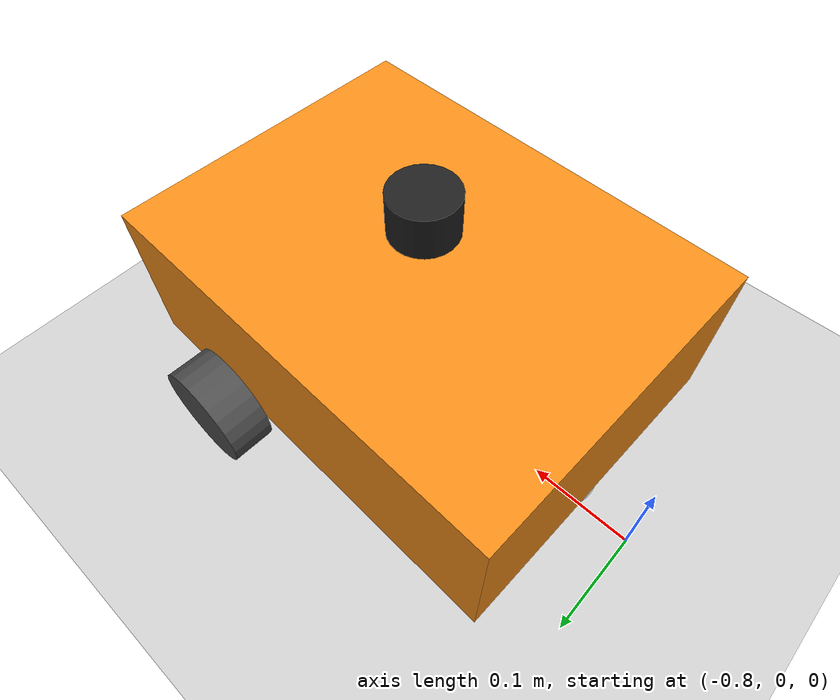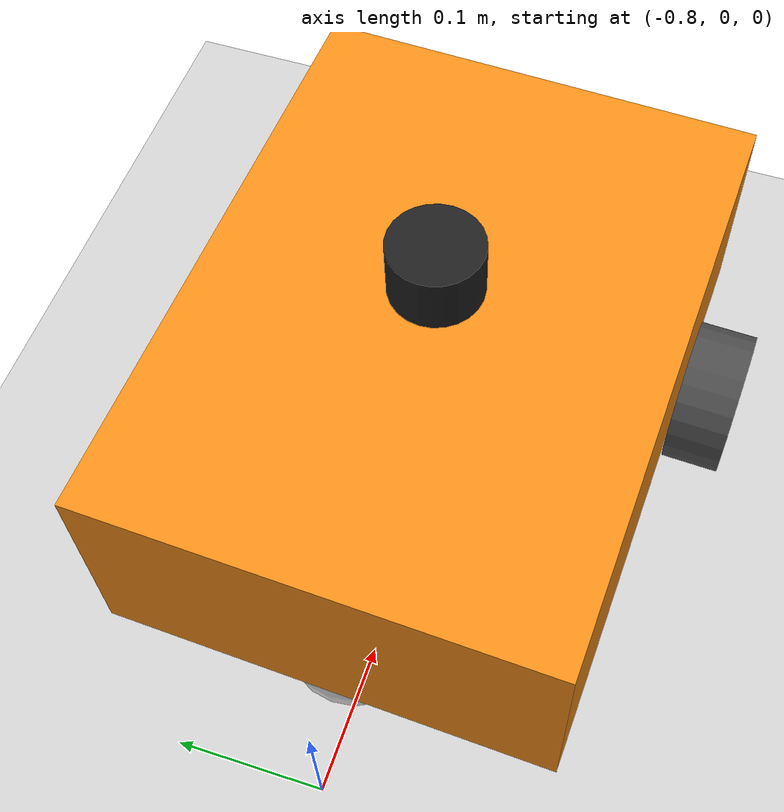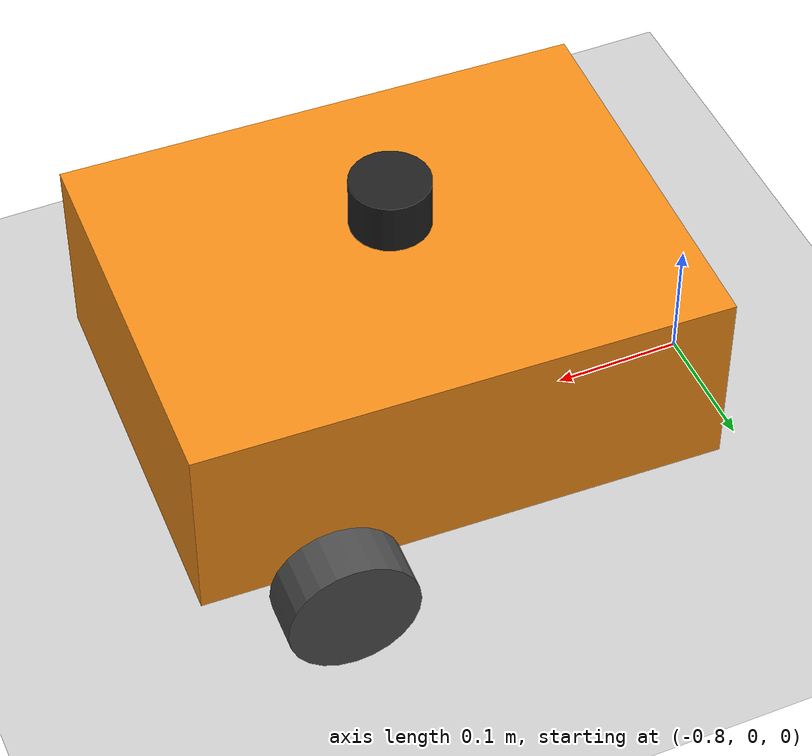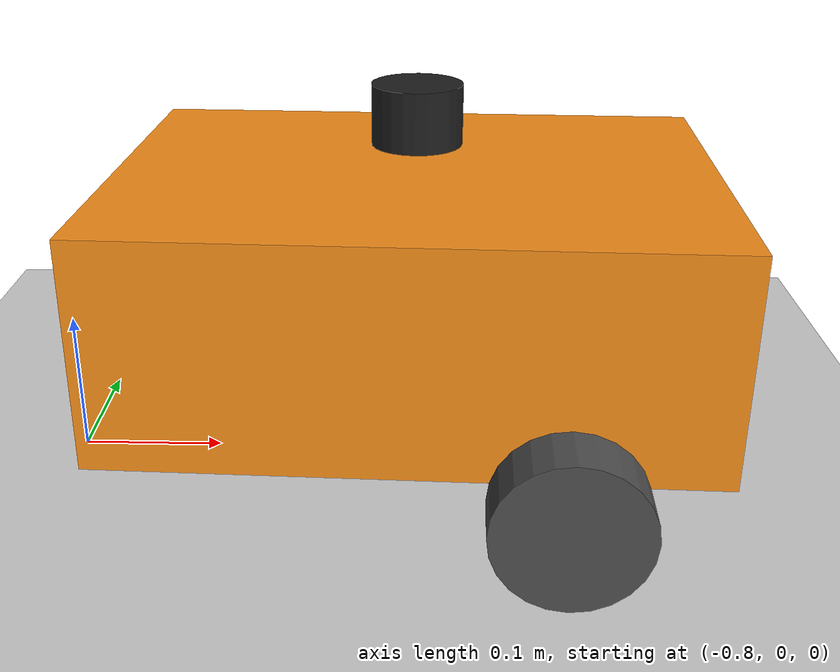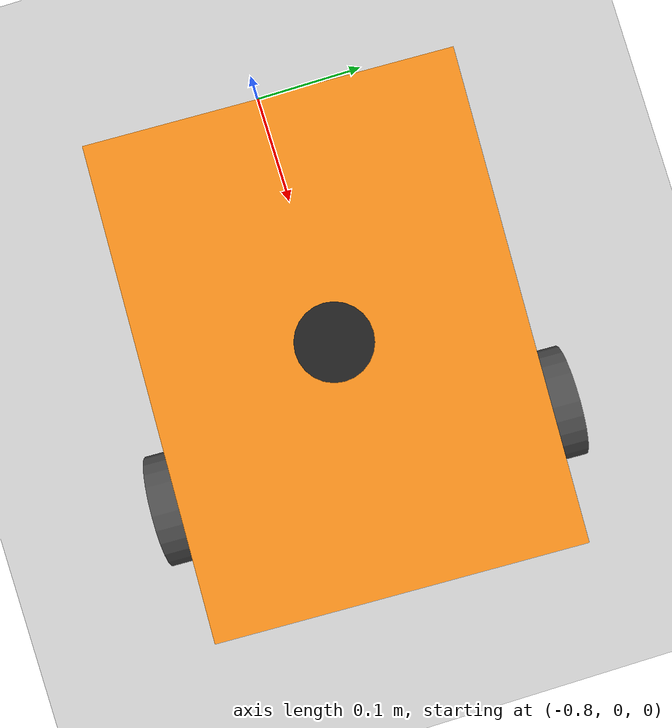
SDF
<sdf version="1.7">
 <world name="test_world">
  <light name="sun" type="directional">
   <pose>0 0 10 0 -0 0</pose>
   <diffuse>0.8 0.8 0.8 1</diffuse>
   <specular>0.2 0.2 0.2 1</specular>
   <attenuation>
    <range>1000</range>
    <constant>0.9</constant>
    <linear>0.01</linear>
    <quadratic>0.001</quadratic>
   </attenuation>
   <direction>-0.5 0.1 -0.9</direction>
   <spot><inner_angle>0</inner_angle><outer_angle>0</outer_angle><falloff>0</falloff></spot>
  </light>
  <model name="ground_plane">
   <static>1</static>
   <link name="link">
    <collision name="collision">
     <geometry><plane><normal>0 0 1</normal><size>100 100</size></plane></geometry>
     <surface><friction><ode><mu>100</mu><mu2>50</mu2></ode></friction></surface>
    </collision>
    <visual name="visual">
     <cast_shadows>0</cast_shadows>
     <geometry><plane><normal>0 0 1</normal><size>100 100</size></plane></geometry>
     <material>
      <script><uri>file://media/materials/scripts/gazebo.material</uri><name>Gazebo/Grey</name></script>
     </material>
    </visual>
   </link>
  </model>
  <physics type="ode">
   <real_time_update_rate>1000</real_time_update_rate>
   <max_step_size>0.001</max_step_size>
   <real_time_factor>1</real_time_factor>
  </physics>
  <gravity>0 0 -9.8</gravity>
  <magnetic_field>6e-06 2.3e-05 -4.2e-05</magnetic_field>
  <atmosphere type="adiabatic"/>
  <scene><ambient>0.4 0.4 0.4 1</ambient><background>0.7 0.7 0.7 1</background><shadows>1</shadows></scene>
  <audio><device>default</device></audio>
  <spherical_coordinates>
   <surface_model>EARTH_WGS84</surface_model>
   <latitude_deg>0</latitude_deg>
   <longitude_deg>0</longitude_deg>
   <elevation>0</elevation>
   <heading_deg>0</heading_deg>
  </spherical_coordinates>
  <model name="andr">
   <link name="base_link">
    <inertial>
     <pose>-0.102885 0 0.124038 0 -0 0</pose>
     <mass>5.2</mass>
     <inertia>
      <ixx>0.0491052</ixx>
      <ixy>0</ixy>
      <ixz>-0.00186058</ixz>
      <iyy>0.0804786</iyy>
      <iyz>0</iyz>
      <izz>0.106483</izz>
     </inertia>
    </inertial>
    <collision name="base_link_fixed_joint_lump__chassis_collision">
     <pose>-0.1 0 0.0875 0 -0 0</pose>
     <geometry><box><size>0.4 0.3 0.15</size></box></geometry>
    </collision>
    <collision name="base_link_fixed_joint_lump__caster_wheel_collision_1">
     <pose>-0.25 0 0 0 -0 0</pose>
     <geometry><sphere><radius>0.05</radius></sphere></geometry>
     <surface><friction><ode><mu>0.001</mu><mu2>0.001</mu2></ode></friction></surface>
    </collision>
    <collision name="base_link_fixed_joint_lump__lidar_link_collision_2">
     <pose>-0.1 0 0.2 0 -0 0</pose>
     <geometry><cylinder><length>0.04</length><radius>0.03</radius></cylinder></geometry>
    </collision>
    <visual name="base_link_fixed_joint_lump__chassis_visual">
     <pose>-0.1 0 0.0875 0 -0 0</pose>
     <geometry><box><size>0.4 0.3 0.15</size></box></geometry>
     <material>
      <script><name>Gazebo/Orange</name><uri>file://media/materials/scripts/gazebo.material</uri></script>
     </material>
    </visual>
    <visual name="base_link_fixed_joint_lump__caster_wheel_visual_1">
     <pose>-0.25 0 0 0 -0 0</pose>
     <geometry><sphere><radius>0.05</radius></sphere></geometry>
     <material>
      <script><name>Gazebo/White</name><uri>file://media/materials/scripts/gazebo.material</uri></script>
     </material>
    </visual>
    <visual name="base_link_fixed_joint_lump__lidar_link_visual_2">
     <pose>-0.1 0 0.2 0 -0 0</pose>
     <geometry><cylinder><length>0.04</length><radius>0.03</radius></cylinder></geometry>
     <material>
      <script><name>Gazebo/Black</name><uri>file://media/materials/scripts/gazebo.material</uri></script>
     </material>
    </visual>
    <sensor name="lidar" type="ray">
     <visualize>1</visualize>
     <update_rate>10</update_rate>
     <ray>
      <scan>
       <horizontal>
        <samples>360</samples>
        <resolution>1</resolution>
        <min_angle>-3.14159</min_angle>
        <max_angle>3.14159</max_angle>
       </horizontal>
       <vertical><samples>1</samples><min_angle>0</min_angle><max_angle>0</max_angle></vertical>
      </scan>
      <range><min>0.12</min><max>12</max><resolution>0.01</resolution></range>
      <noise><type>gaussian</type><mean>0</mean><stddev>0.01</stddev></noise>
     </ray>
     <plugin name="gazebo_ros_lidar" filename="libgazebo_ros_ray_sensor.so">
      <ros><remapping>~/out:=scan</remapping></ros>
      <output_type>sensor_msgs/LaserScan</output_type>
      <frame_name>lidar_link</frame_name>
     </plugin>
     <pose>-0.1 0 0.2 0 -0 0</pose>
    </sensor>
   </link>
   <joint name="left_wheel_joint" type="revolute">
    <pose relative_to="base_link">0 0.17 0 -1.5708 0 0</pose>
    <parent>base_link</parent>
    <child>left_wheel</child>
    <axis>
     <xyz>0 0 1</xyz>
     <limit><lower>-1e+16</lower><upper>1e+16</upper></limit>
     <dynamics><spring_reference>0</spring_reference><spring_stiffness>0</spring_stiffness></dynamics>
    </axis>
   </joint>
   <link name="left_wheel">
    <pose relative_to="left_wheel_joint">0 0 0 0 -0 0</pose>
    <inertial>
     <mass>0.5</mass>
     <inertia>
      <ixx>0.000379167</ixx>
      <ixy>0</ixy>
      <ixz>0</ixz>
      <iyy>0.000379167</iyy>
      <iyz>0</iyz>
      <izz>0.000625</izz>
     </inertia>
    </inertial>
    <collision name="left_wheel_collision">
     <geometry><cylinder><length>0.04</length><radius>0.05</radius></cylinder></geometry>
     <surface><friction><ode><mu>1</mu><mu2>1</mu2></ode></friction></surface>
    </collision>
    <visual name="left_wheel_visual">
     <geometry><cylinder><length>0.04</length><radius>0.05</radius></cylinder></geometry>
     <material>
      <script><name>Gazebo/DarkGrey</name><uri>file://media/materials/scripts/gazebo.material</uri></script>
     </material>
    </visual>
   </link>
   <joint name="right_wheel_joint" type="revolute">
    <pose relative_to="base_link">0 -0.17 0 -1.5708 0 0</pose>
    <parent>base_link</parent>
    <child>right_wheel</child>
    <axis>
     <xyz>0 0 1</xyz>
     <limit><lower>-1e+16</lower><upper>1e+16</upper></limit>
     <dynamics><spring_reference>0</spring_reference><spring_stiffness>0</spring_stiffness></dynamics>
    </axis>
   </joint>
   <link name="right_wheel">
    <pose relative_to="right_wheel_joint">0 0 0 0 -0 0</pose>
    <inertial>
     <mass>0.5</mass>
     <inertia>
      <ixx>0.000379167</ixx>
      <ixy>0</ixy>
      <ixz>0</ixz>
      <iyy>0.000379167</iyy>
      <iyz>0</iyz>
      <izz>0.000625</izz>
     </inertia>
    </inertial>
    <collision name="right_wheel_collision">
     <geometry><cylinder><length>0.04</length><radius>0.05</radius></cylinder></geometry>
     <surface><friction><ode><mu>1</mu><mu2>1</mu2></ode></friction></surface>
    </collision>
    <visual name="right_wheel_visual">
     <geometry><cylinder><length>0.04</length><radius>0.05</radius></cylinder></geometry>
     <material>
      <script><name>Gazebo/DarkGrey</name><uri>file://media/materials/scripts/gazebo.material</uri></script>
     </material>
    </visual>
   </link>
   <static>0</static>
   <plugin name="diff_drive" filename="libgazebo_ros_diff_drive.so">
    <left_joint>left_wheel_joint</left_joint>
    <right_joint>right_wheel_joint</right_joint>
    <wheel_separation>0.33999999999999997</wheel_separation>
    <wheel_diameter>0.1</wheel_diameter>
    <max_wheel_torque>20.0</max_wheel_torque>
    <max_wheel_acceleration>1.0</max_wheel_acceleration>
    <odometry_frame>odom</odometry_frame>
    <robot_base_frame>base_link</robot_base_frame>
    <publish_odom>1</publish_odom>
    <publish_odom_tf>1</publish_odom_tf>
    <publish_wheel_tf>1</publish_wheel_tf>
    <command_topic>cmd_vel</command_topic>
    <odometry_topic>odom</odometry_topic>
    <update_rate>50.0</update_rate>
   </plugin>
   <pose>-0.456323 -0.001959 0.049997 1.9e-05 1.2e-05 -0.035481</pose>
  </model>
 </world>
</sdf>
